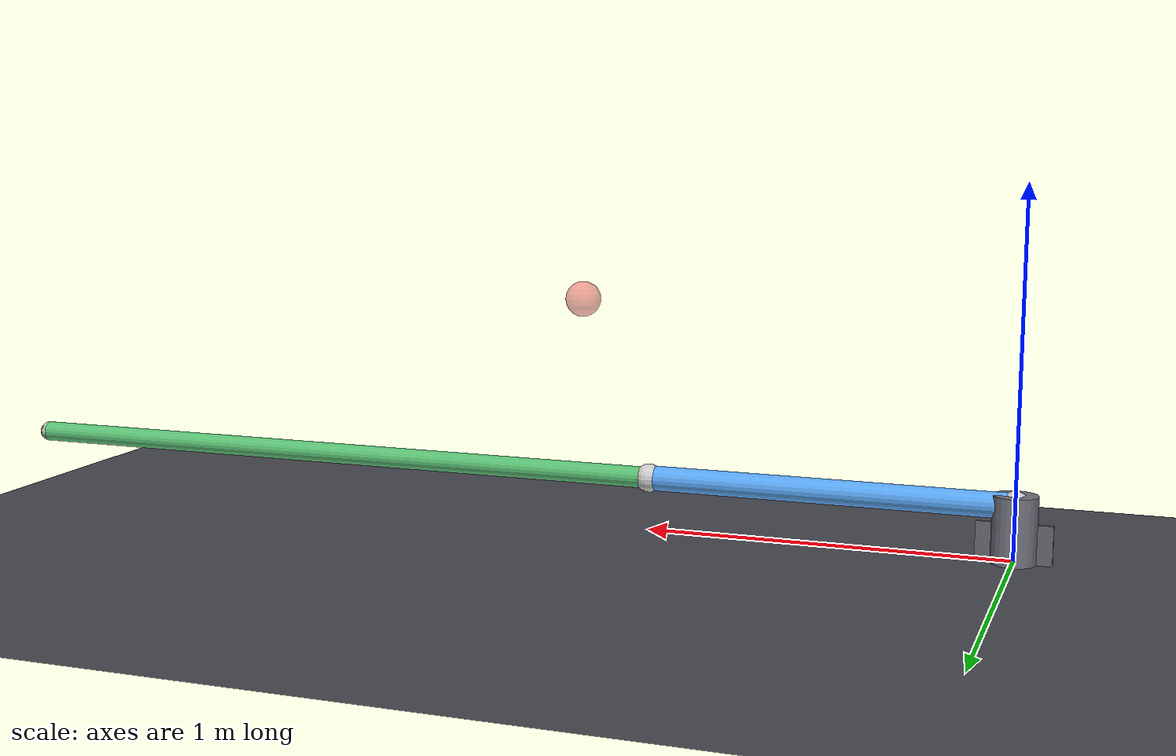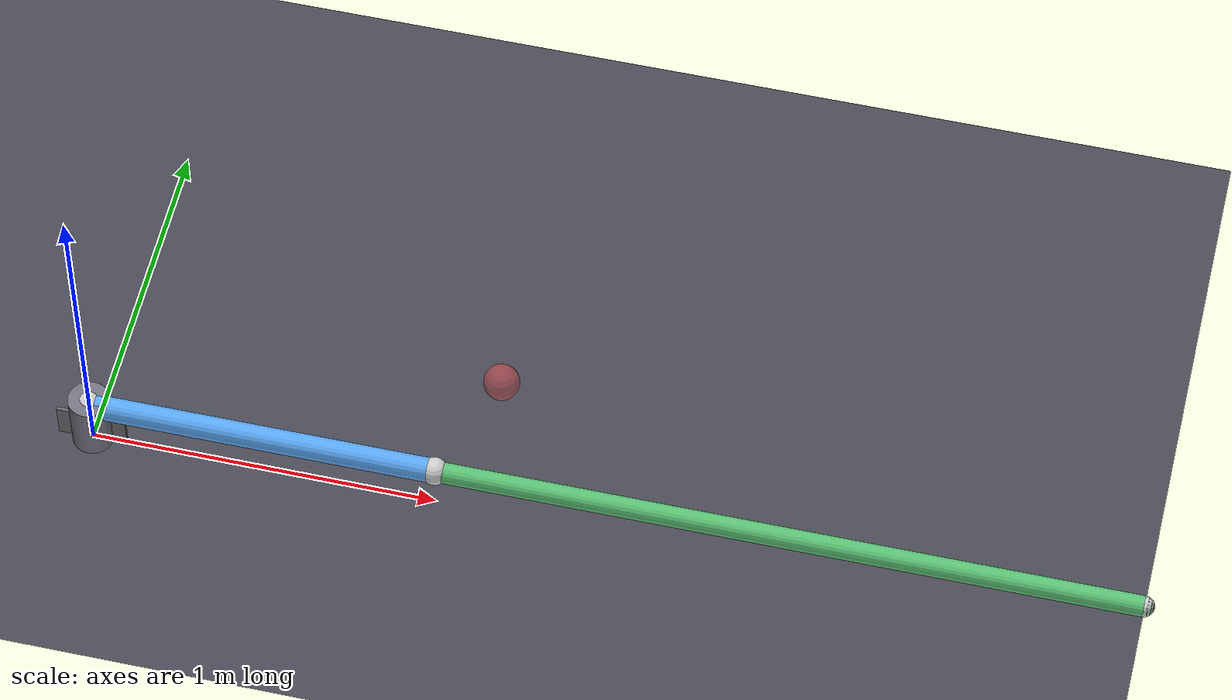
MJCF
<mujoco model="ironarm">
  <compiler angle="radian"/>

  <visual>
    <global offwidth="2048" offheight="2048"/>
  </visual>

  <worldbody>
    <!-- Floor (X-Y plane, Z=0) -->
    <geom type="plane" size="3 3 0.1" rgba="0.28 0.28 0.32 1"/>

    <!-- Base pedestal -->
    <body name="base" pos="0 0 0">
      <geom type="cylinder" size="0.06 0.12" pos="0 0 0.06" rgba="0.45 0.45 0.50 1"/>
      <geom type="box" size="0.1 0.005 0.1" pos="0 0 0.005" rgba="0.40 0.40 0.42 1"/>
    </body>

    <!-- Shoulder (base rotation around Z) -->
    <body name="shoulder" pos="0 0 0.15">
      <joint name="j0" type="hinge" axis="0 0 1"/>
      <geom type="sphere" size="0.04" rgba="0.80 0.80 0.80 1"/>
      <!-- Upper arm (extends along +X) -->
      <body name="upper_arm" pos="0 0 0">
        <geom type="capsule" size="0.035" fromto="0 0 0 1.0 0 0" rgba="0.35 0.65 0.95 1"/>
        <!-- Elbow (pitch around Y) -->
        <body name="elbow" pos="1.0 0 0">
          <joint name="j1" type="hinge" axis="0 1 0"/>
          <geom type="sphere" size="0.04" rgba="0.80 0.80 0.80 1"/>
          <!-- Forearm (extends along +X, folds in XZ plane) -->
          <body name="forearm" pos="0 0 0">
            <geom type="capsule" size="0.03" fromto="0 0 0 2.0 0 0" rgba="0.35 0.75 0.45 1"/>
            <!-- Wrist -->
            <body name="wrist" pos="2.0 0 0">
              <geom type="sphere" size="0.03" rgba="0.80 0.80 0.80 1"/>
            </body>
          </body>
        </body>
      </body>
    </body>

    <!-- Target marker -->
    <body name="target" pos="1.2 0 0.65">
      <geom type="sphere" size="0.05" rgba="0.9 0.3 0.3 0.5"/>
    </body>
  </worldbody>
</mujoco>
